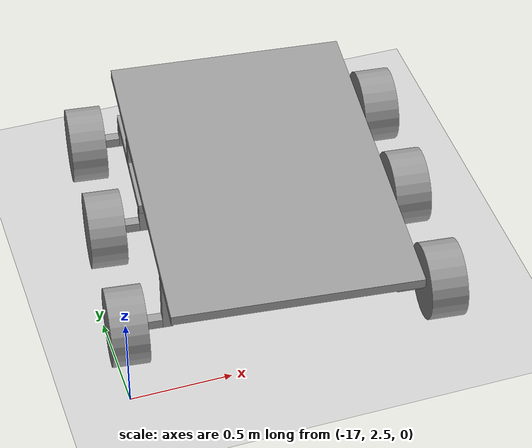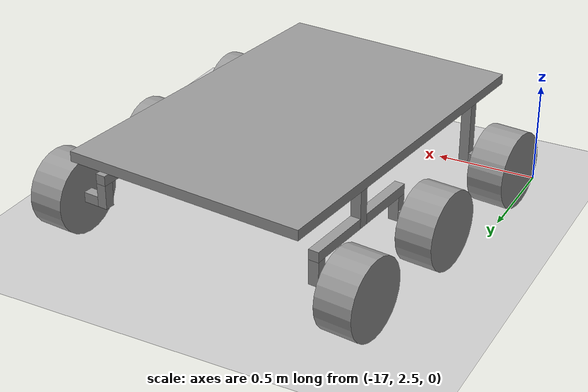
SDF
<sdf version="1.6">
 <world name="default">
  <model name="ground_plane">
   <static>1</static>
   <link name="link">
    <collision name="collision">
     <geometry><plane><normal>0 0 1</normal><size>100 100</size></plane></geometry>
     <surface><friction><ode><mu>100</mu><mu2>50</mu2></ode></friction></surface>
    </collision>
    <visual name="visual">
     <cast_shadows>0</cast_shadows>
     <geometry><plane><normal>0 0 1</normal><size>100 100</size></plane></geometry>
     <material>
      <script><uri>file://media/materials/scripts/gazebo.material</uri><name>Gazebo/Grey</name></script>
     </material>
    </visual>
   </link>
  </model>
  <model name="model1_0">
   <link name="link_0">
    <inertial>
     <mass>1</mass>
     <inertia>
      <ixx>0.166667</ixx>
      <ixy>0</ixy>
      <ixz>0</ixz>
      <iyy>0.166667</iyy>
      <iyz>0</iyz>
      <izz>0.166667</izz>
     </inertia>
    </inertial>
    <pose>0.453204 0.202085 0.600179 0 -0 0</pose>
    <visual name="visual">
     <geometry><box><size>1.2 1.8 0.05</size></box></geometry>
     <material>
      <lighting>1</lighting>
      <script><uri>file://media/materials/scripts/gazebo.material</uri><name>Gazebo/Grey</name></script>
      <shader type="pixel"><normal_map>__default__</normal_map></shader>
      <ambient>0.3 0.3 0.3 1</ambient>
      <diffuse>0.7 0.7 0.7 1</diffuse>
      <specular>0.01 0.01 0.01 1</specular>
      <emissive>0 0 0 1</emissive>
     </material>
    </visual>
    <collision name="collision">
     <geometry><box><size>1.2 1.8 0.05</size></box></geometry>
     <surface>
      <friction>
       <ode><mu>1</mu><mu2>1</mu2><fdir1>0 0 0</fdir1><slip1>0</slip1><slip2>0</slip2></ode>
       <torsional>
        <coefficient>1</coefficient>
        <patch_radius>0</patch_radius>
        <surface_radius>0</surface_radius>
        <use_patch_radius>1</use_patch_radius>
        <ode><slip>0</slip></ode>
       </torsional>
      </friction>
      <bounce><restitution_coefficient>0</restitution_coefficient><threshold>1e+06</threshold></bounce>
      <contact>
       <collide_without_contact>0</collide_without_contact>
       <collide_without_contact_bitmask>1</collide_without_contact_bitmask>
       <collide_bitmask>1</collide_bitmask>
       <ode>
        <soft_cfm>0</soft_cfm>
        <soft_erp>0.2</soft_erp>
        <kp>1e+13</kp>
        <kd>1</kd>
        <max_vel>0.01</max_vel>
        <min_depth>0</min_depth>
       </ode>
       <bullet>
        <split_impulse>1</split_impulse>
        <split_impulse_penetration_threshold>-0.01</split_impulse_penetration_threshold>
        <soft_cfm>0</soft_cfm>
        <soft_erp>0.2</soft_erp>
        <kp>1e+13</kp>
        <kd>1</kd>
       </bullet>
      </contact>
     </surface>
    </collision>
   </link>
   <link name="link_0_0_clone_clone_1">
    <inertial>
     <mass>1</mass>
     <inertia><ixx>0.145833</ixx><ixy>0</ixy><ixz>0</ixz><iyy>0.145833</iyy><iyz>0</iyz><izz>0.125</izz></inertia>
    </inertial>
    <pose>1.2232 -0.397915 0.300179 -3.14153 1.57079 -3.14153</pose>
    <visual name="visual_0">
     <geometry><cylinder><radius>0.19</radius><length>0.18</length></cylinder></geometry>
     <material>
      <lighting>1</lighting>
      <script><uri>file://media/materials/scripts/gazebo.material</uri><name>Gazebo/Grey</name></script>
      <shader type="pixel"><normal_map>__default__</normal_map></shader>
      <ambient>0.3 0.3 0.3 1</ambient>
      <diffuse>0.7 0.7 0.7 1</diffuse>
      <specular>0.01 0.01 0.01 1</specular>
      <emissive>0 0 0 1</emissive>
     </material>
    </visual>
    <collision name="collision">
     <geometry><cylinder><radius>0.19</radius><length>0.18</length></cylinder></geometry>
     <surface>
      <friction>
       <ode><mu>1</mu><mu2>1</mu2><fdir1>0 0 0</fdir1><slip1>0</slip1><slip2>0</slip2></ode>
       <torsional>
        <coefficient>1</coefficient>
        <patch_radius>0</patch_radius>
        <surface_radius>0</surface_radius>
        <use_patch_radius>1</use_patch_radius>
        <ode><slip>0</slip></ode>
       </torsional>
      </friction>
      <bounce><restitution_coefficient>0</restitution_coefficient><threshold>1e+06</threshold></bounce>
      <contact>
       <collide_without_contact>0</collide_without_contact>
       <collide_without_contact_bitmask>1</collide_without_contact_bitmask>
       <collide_bitmask>1</collide_bitmask>
       <ode>
        <soft_cfm>0</soft_cfm>
        <soft_erp>0.2</soft_erp>
        <kp>1e+13</kp>
        <kd>1</kd>
        <max_vel>0.01</max_vel>
        <min_depth>0</min_depth>
       </ode>
       <bullet>
        <split_impulse>1</split_impulse>
        <split_impulse_penetration_threshold>-0.01</split_impulse_penetration_threshold>
        <soft_cfm>0</soft_cfm>
        <soft_erp>0.2</soft_erp>
        <kp>1e+13</kp>
        <kd>1</kd>
       </bullet>
      </contact>
     </surface>
    </collision>
   </link>
   <link name="link_0_0_clone_clone_1_clone_0">
    <inertial>
     <mass>1</mass>
     <inertia><ixx>0.145833</ixx><ixy>0</ixy><ixz>0</ixz><iyy>0.145833</iyy><iyz>0</iyz><izz>0.125</izz></inertia>
    </inertial>
    <pose>1.2232 0.277085 0.30018 -3.14153 1.57079 -3.14153</pose>
    <visual name="visual_0">
     <geometry><cylinder><radius>0.19</radius><length>0.18</length></cylinder></geometry>
     <material>
      <lighting>1</lighting>
      <script><uri>file://media/materials/scripts/gazebo.material</uri><name>Gazebo/Grey</name></script>
      <shader type="pixel"><normal_map>__default__</normal_map></shader>
      <ambient>0.3 0.3 0.3 1</ambient>
      <diffuse>0.7 0.7 0.7 1</diffuse>
      <specular>0.01 0.01 0.01 1</specular>
      <emissive>0 0 0 1</emissive>
     </material>
    </visual>
    <collision name="collision">
     <geometry><cylinder><radius>0.19</radius><length>0.18</length></cylinder></geometry>
     <surface>
      <friction>
       <ode><mu>1</mu><mu2>1</mu2><fdir1>0 0 0</fdir1><slip1>0</slip1><slip2>0</slip2></ode>
       <torsional>
        <coefficient>1</coefficient>
        <patch_radius>0</patch_radius>
        <surface_radius>0</surface_radius>
        <use_patch_radius>1</use_patch_radius>
        <ode><slip>0</slip></ode>
       </torsional>
      </friction>
      <bounce><restitution_coefficient>0</restitution_coefficient><threshold>1e+06</threshold></bounce>
      <contact>
       <collide_without_contact>0</collide_without_contact>
       <collide_without_contact_bitmask>1</collide_without_contact_bitmask>
       <collide_bitmask>1</collide_bitmask>
       <ode>
        <soft_cfm>0</soft_cfm>
        <soft_erp>0.2</soft_erp>
        <kp>1e+13</kp>
        <kd>1</kd>
        <max_vel>0.01</max_vel>
        <min_depth>0</min_depth>
       </ode>
       <bullet>
        <split_impulse>1</split_impulse>
        <split_impulse_penetration_threshold>-0.01</split_impulse_penetration_threshold>
        <soft_cfm>0</soft_cfm>
        <soft_erp>0.2</soft_erp>
        <kp>1e+13</kp>
        <kd>1</kd>
       </bullet>
      </contact>
     </surface>
    </collision>
   </link>
   <link name="link_0_0_clone_clone_1_clone_1">
    <inertial>
     <mass>1</mass>
     <inertia><ixx>0.145833</ixx><ixy>0</ixy><ixz>0</ixz><iyy>0.145833</iyy><iyz>0</iyz><izz>0.125</izz></inertia>
    </inertial>
    <pose>1.2232 0.927085 0.30018 -3.14153 1.57079 -3.14153</pose>
    <visual name="visual_0">
     <geometry><cylinder><radius>0.19</radius><length>0.18</length></cylinder></geometry>
     <material>
      <lighting>1</lighting>
      <script><uri>file://media/materials/scripts/gazebo.material</uri><name>Gazebo/Grey</name></script>
      <shader type="pixel"><normal_map>__default__</normal_map></shader>
      <ambient>0.3 0.3 0.3 1</ambient>
      <diffuse>0.7 0.7 0.7 1</diffuse>
      <specular>0.01 0.01 0.01 1</specular>
      <emissive>0 0 0 1</emissive>
     </material>
    </visual>
    <collision name="collision">
     <geometry><cylinder><radius>0.19</radius><length>0.18</length></cylinder></geometry>
     <surface>
      <friction>
       <ode><mu>1</mu><mu2>1</mu2><fdir1>0 0 0</fdir1><slip1>0</slip1><slip2>0</slip2></ode>
       <torsional>
        <coefficient>1</coefficient>
        <patch_radius>0</patch_radius>
        <surface_radius>0</surface_radius>
        <use_patch_radius>1</use_patch_radius>
        <ode><slip>0</slip></ode>
       </torsional>
      </friction>
      <bounce><restitution_coefficient>0</restitution_coefficient><threshold>1e+06</threshold></bounce>
      <contact>
       <collide_without_contact>0</collide_without_contact>
       <collide_without_contact_bitmask>1</collide_without_contact_bitmask>
       <collide_bitmask>1</collide_bitmask>
       <ode>
        <soft_cfm>0</soft_cfm>
        <soft_erp>0.2</soft_erp>
        <kp>1e+13</kp>
        <kd>1</kd>
        <max_vel>0.01</max_vel>
        <min_depth>0</min_depth>
       </ode>
       <bullet>
        <split_impulse>1</split_impulse>
        <split_impulse_penetration_threshold>-0.01</split_impulse_penetration_threshold>
        <soft_cfm>0</soft_cfm>
        <soft_erp>0.2</soft_erp>
        <kp>1e+13</kp>
        <kd>1</kd>
       </bullet>
      </contact>
     </surface>
    </collision>
   </link>
   <link name="link_0_0_clone_clone_1_clone_clone_1">
    <inertial>
     <mass>1</mass>
     <inertia><ixx>0.145833</ixx><ixy>0</ixy><ixz>0</ixz><iyy>0.145833</iyy><iyz>0</iyz><izz>0.125</izz></inertia>
    </inertial>
    <pose>-0.319461 -0.397915 0.300179 3.14154 -1.57079 3.12758</pose>
    <visual name="visual_0">
     <geometry><cylinder><radius>0.19</radius><length>0.18</length></cylinder></geometry>
     <material>
      <lighting>1</lighting>
      <script><uri>file://media/materials/scripts/gazebo.material</uri><name>Gazebo/Grey</name></script>
      <shader type="pixel"><normal_map>__default__</normal_map></shader>
      <ambient>0.3 0.3 0.3 1</ambient>
      <diffuse>0.7 0.7 0.7 1</diffuse>
      <specular>0.01 0.01 0.01 1</specular>
      <emissive>0 0 0 1</emissive>
     </material>
    </visual>
    <collision name="collision">
     <geometry><cylinder><radius>0.19</radius><length>0.18</length></cylinder></geometry>
     <surface>
      <friction>
       <ode><mu>1</mu><mu2>1</mu2><fdir1>0 0 0</fdir1><slip1>0</slip1><slip2>0</slip2></ode>
       <torsional>
        <coefficient>1</coefficient>
        <patch_radius>0</patch_radius>
        <surface_radius>0</surface_radius>
        <use_patch_radius>1</use_patch_radius>
        <ode><slip>0</slip></ode>
       </torsional>
      </friction>
      <bounce><restitution_coefficient>0</restitution_coefficient><threshold>1e+06</threshold></bounce>
      <contact>
       <collide_without_contact>0</collide_without_contact>
       <collide_without_contact_bitmask>1</collide_without_contact_bitmask>
       <collide_bitmask>1</collide_bitmask>
       <ode>
        <soft_cfm>0</soft_cfm>
        <soft_erp>0.2</soft_erp>
        <kp>1e+13</kp>
        <kd>1</kd>
        <max_vel>0.01</max_vel>
        <min_depth>0</min_depth>
       </ode>
       <bullet>
        <split_impulse>1</split_impulse>
        <split_impulse_penetration_threshold>-0.01</split_impulse_penetration_threshold>
        <soft_cfm>0</soft_cfm>
        <soft_erp>0.2</soft_erp>
        <kp>1e+13</kp>
        <kd>1</kd>
       </bullet>
      </contact>
     </surface>
    </collision>
   </link>
   <link name="link_0_0_clone_clone_1_clone_clone_1_clone">
    <inertial>
     <mass>1</mass>
     <inertia><ixx>0.145833</ixx><ixy>0</ixy><ixz>0</ixz><iyy>0.145833</iyy><iyz>0</iyz><izz>0.125</izz></inertia>
    </inertial>
    <pose>-0.319461 0.277085 0.30018 3.14154 -1.57079 3.12758</pose>
    <visual name="visual_0">
     <geometry><cylinder><radius>0.19</radius><length>0.18</length></cylinder></geometry>
     <material>
      <lighting>1</lighting>
      <script><uri>file://media/materials/scripts/gazebo.material</uri><name>Gazebo/Grey</name></script>
      <shader type="pixel"><normal_map>__default__</normal_map></shader>
      <ambient>0.3 0.3 0.3 1</ambient>
      <diffuse>0.7 0.7 0.7 1</diffuse>
      <specular>0.01 0.01 0.01 1</specular>
      <emissive>0 0 0 1</emissive>
     </material>
    </visual>
    <collision name="collision">
     <geometry><cylinder><radius>0.19</radius><length>0.18</length></cylinder></geometry>
     <surface>
      <friction>
       <ode><mu>1</mu><mu2>1</mu2><fdir1>0 0 0</fdir1><slip1>0</slip1><slip2>0</slip2></ode>
       <torsional>
        <coefficient>1</coefficient>
        <patch_radius>0</patch_radius>
        <surface_radius>0</surface_radius>
        <use_patch_radius>1</use_patch_radius>
        <ode><slip>0</slip></ode>
       </torsional>
      </friction>
      <bounce><restitution_coefficient>0</restitution_coefficient><threshold>1e+06</threshold></bounce>
      <contact>
       <collide_without_contact>0</collide_without_contact>
       <collide_without_contact_bitmask>1</collide_without_contact_bitmask>
       <collide_bitmask>1</collide_bitmask>
       <ode>
        <soft_cfm>0</soft_cfm>
        <soft_erp>0.2</soft_erp>
        <kp>1e+13</kp>
        <kd>1</kd>
        <max_vel>0.01</max_vel>
        <min_depth>0</min_depth>
       </ode>
       <bullet>
        <split_impulse>1</split_impulse>
        <split_impulse_penetration_threshold>-0.01</split_impulse_penetration_threshold>
        <soft_cfm>0</soft_cfm>
        <soft_erp>0.2</soft_erp>
        <kp>1e+13</kp>
        <kd>1</kd>
       </bullet>
      </contact>
     </surface>
    </collision>
   </link>
   <link name="link_0_0_clone_clone_1_clone_clone_1_clone_0">
    <inertial>
     <mass>1</mass>
     <inertia><ixx>0.145833</ixx><ixy>0</ixy><ixz>0</ixz><iyy>0.145833</iyy><iyz>0</iyz><izz>0.125</izz></inertia>
    </inertial>
    <pose>-0.319461 0.927085 0.30018 3.14154 -1.57079 3.12758</pose>
    <visual name="visual_0">
     <geometry><cylinder><radius>0.19</radius><length>0.18</length></cylinder></geometry>
     <material>
      <lighting>1</lighting>
      <script><uri>file://media/materials/scripts/gazebo.material</uri><name>Gazebo/Grey</name></script>
      <shader type="pixel"><normal_map>__default__</normal_map></shader>
      <ambient>0.3 0.3 0.3 1</ambient>
      <diffuse>0.7 0.7 0.7 1</diffuse>
      <specular>0.01 0.01 0.01 1</specular>
      <emissive>0 0 0 1</emissive>
     </material>
    </visual>
    <collision name="collision">
     <geometry><cylinder><radius>0.19</radius><length>0.18</length></cylinder></geometry>
     <surface>
      <friction>
       <ode><mu>1</mu><mu2>1</mu2><fdir1>0 0 0</fdir1><slip1>0</slip1><slip2>0</slip2></ode>
       <torsional>
        <coefficient>1</coefficient>
        <patch_radius>0</patch_radius>
        <surface_radius>0</surface_radius>
        <use_patch_radius>1</use_patch_radius>
        <ode><slip>0</slip></ode>
       </torsional>
      </friction>
      <bounce><restitution_coefficient>0</restitution_coefficient><threshold>1e+06</threshold></bounce>
      <contact>
       <collide_without_contact>0</collide_without_contact>
       <collide_without_contact_bitmask>1</collide_without_contact_bitmask>
       <collide_bitmask>1</collide_bitmask>
       <ode>
        <soft_cfm>0</soft_cfm>
        <soft_erp>0.2</soft_erp>
        <kp>1e+13</kp>
        <kd>1</kd>
        <max_vel>0.01</max_vel>
        <min_depth>0</min_depth>
       </ode>
       <bullet>
        <split_impulse>1</split_impulse>
        <split_impulse_penetration_threshold>-0.01</split_impulse_penetration_threshold>
        <soft_cfm>0</soft_cfm>
        <soft_erp>0.2</soft_erp>
        <kp>1e+13</kp>
        <kd>1</kd>
       </bullet>
      </contact>
     </surface>
    </collision>
   </link>
   <link name="link_1_clone">
    <inertial>
     <mass>1</mass>
     <inertia>
      <ixx>0.166667</ixx>
      <ixy>0</ixy>
      <ixz>0</ixz>
      <iyy>0.166667</iyy>
      <iyz>0</iyz>
      <izz>0.166667</izz>
     </inertia>
    </inertial>
    <pose>-0.121796 0.602085 0.485179 0 -0 0</pose>
    <visual name="visual">
     <geometry><box><size>0.05 0.05 0.18</size></box></geometry>
     <material>
      <lighting>1</lighting>
      <script><uri>file://media/materials/scripts/gazebo.material</uri><name>Gazebo/Grey</name></script>
      <shader type="pixel"><normal_map>__default__</normal_map></shader>
      <ambient>0.3 0.3 0.3 1</ambient>
      <diffuse>0.7 0.7 0.7 1</diffuse>
      <specular>0.01 0.01 0.01 1</specular>
      <emissive>0 0 0 1</emissive>
     </material>
    </visual>
    <collision name="collision">
     <geometry><box><size>0.05 0.05 0.18</size></box></geometry>
     <surface>
      <friction>
       <ode><mu>1</mu><mu2>1</mu2><fdir1>0 0 0</fdir1><slip1>0</slip1><slip2>0</slip2></ode>
       <torsional>
        <coefficient>1</coefficient>
        <patch_radius>0</patch_radius>
        <surface_radius>0</surface_radius>
        <use_patch_radius>1</use_patch_radius>
        <ode><slip>0</slip></ode>
       </torsional>
      </friction>
      <bounce><restitution_coefficient>0</restitution_coefficient><threshold>1e+06</threshold></bounce>
      <contact>
       <collide_without_contact>0</collide_without_contact>
       <collide_without_contact_bitmask>1</collide_without_contact_bitmask>
       <collide_bitmask>1</collide_bitmask>
       <ode>
        <soft_cfm>0</soft_cfm>
        <soft_erp>0.2</soft_erp>
        <kp>1e+13</kp>
        <kd>1</kd>
        <max_vel>0.01</max_vel>
        <min_depth>0</min_depth>
       </ode>
       <bullet>
        <split_impulse>1</split_impulse>
        <split_impulse_penetration_threshold>-0.01</split_impulse_penetration_threshold>
        <soft_cfm>0</soft_cfm>
        <soft_erp>0.2</soft_erp>
        <kp>1e+13</kp>
        <kd>1</kd>
       </bullet>
      </contact>
     </surface>
    </collision>
   </link>
   <link name="link_1_clone_0">
    <inertial>
     <mass>1</mass>
     <inertia>
      <ixx>0.166667</ixx>
      <ixy>0</ixy>
      <ixz>0</ixz>
      <iyy>0.166667</iyy>
      <iyz>0</iyz>
      <izz>0.166667</izz>
     </inertia>
    </inertial>
    <pose>1.0282 -0.397915 0.425179 0 -0 0</pose>
    <visual name="visual">
     <geometry><box><size>0.05 0.05 0.3</size></box></geometry>
     <material>
      <lighting>1</lighting>
      <script><uri>file://media/materials/scripts/gazebo.material</uri><name>Gazebo/Grey</name></script>
      <shader type="pixel"><normal_map>__default__</normal_map></shader>
      <ambient>0.3 0.3 0.3 1</ambient>
      <diffuse>0.7 0.7 0.7 1</diffuse>
      <specular>0.01 0.01 0.01 1</specular>
      <emissive>0 0 0 1</emissive>
     </material>
    </visual>
    <collision name="collision">
     <geometry><box><size>0.05 0.05 0.3</size></box></geometry>
     <surface>
      <friction>
       <ode><mu>1</mu><mu2>1</mu2><fdir1>0 0 0</fdir1><slip1>0</slip1><slip2>0</slip2></ode>
       <torsional>
        <coefficient>1</coefficient>
        <patch_radius>0</patch_radius>
        <surface_radius>0</surface_radius>
        <use_patch_radius>1</use_patch_radius>
        <ode><slip>0</slip></ode>
       </torsional>
      </friction>
      <bounce><restitution_coefficient>0</restitution_coefficient><threshold>1e+06</threshold></bounce>
      <contact>
       <collide_without_contact>0</collide_without_contact>
       <collide_without_contact_bitmask>1</collide_without_contact_bitmask>
       <collide_bitmask>1</collide_bitmask>
       <ode>
        <soft_cfm>0</soft_cfm>
        <soft_erp>0.2</soft_erp>
        <kp>1e+13</kp>
        <kd>1</kd>
        <max_vel>0.01</max_vel>
        <min_depth>0</min_depth>
       </ode>
       <bullet>
        <split_impulse>1</split_impulse>
        <split_impulse_penetration_threshold>-0.01</split_impulse_penetration_threshold>
        <soft_cfm>0</soft_cfm>
        <soft_erp>0.2</soft_erp>
        <kp>1e+13</kp>
        <kd>1</kd>
       </bullet>
      </contact>
     </surface>
    </collision>
   </link>
   <link name="link_1_clone_0_clone">
    <inertial>
     <mass>1</mass>
     <inertia>
      <ixx>0.166667</ixx>
      <ixy>0</ixy>
      <ixz>0</ixz>
      <iyy>0.166667</iyy>
      <iyz>0</iyz>
      <izz>0.166667</izz>
     </inertia>
    </inertial>
    <pose>1.0282 0.602085 0.485179 3.14159 -0 0</pose>
    <visual name="visual">
     <geometry><box><size>0.05 0.05 0.18</size></box></geometry>
     <material>
      <lighting>1</lighting>
      <script><uri>file://media/materials/scripts/gazebo.material</uri><name>Gazebo/Grey</name></script>
      <shader type="pixel"><normal_map>__default__</normal_map></shader>
      <ambient>0.3 0.3 0.3 1</ambient>
      <diffuse>0.7 0.7 0.7 1</diffuse>
      <specular>0.01 0.01 0.01 1</specular>
      <emissive>0 0 0 1</emissive>
     </material>
    </visual>
    <collision name="collision">
     <geometry><box><size>0.05 0.05 0.18</size></box></geometry>
     <surface>
      <friction>
       <ode><mu>1</mu><mu2>1</mu2><fdir1>0 0 0</fdir1><slip1>0</slip1><slip2>0</slip2></ode>
       <torsional>
        <coefficient>1</coefficient>
        <patch_radius>0</patch_radius>
        <surface_radius>0</surface_radius>
        <use_patch_radius>1</use_patch_radius>
        <ode><slip>0</slip></ode>
       </torsional>
      </friction>
      <bounce><restitution_coefficient>0</restitution_coefficient><threshold>1e+06</threshold></bounce>
      <contact>
       <collide_without_contact>0</collide_without_contact>
       <collide_without_contact_bitmask>1</collide_without_contact_bitmask>
       <collide_bitmask>1</collide_bitmask>
       <ode>
        <soft_cfm>0</soft_cfm>
        <soft_erp>0.2</soft_erp>
        <kp>1e+13</kp>
        <kd>1</kd>
        <max_vel>0.01</max_vel>
        <min_depth>0</min_depth>
       </ode>
       <bullet>
        <split_impulse>1</split_impulse>
        <split_impulse_penetration_threshold>-0.01</split_impulse_penetration_threshold>
        <soft_cfm>0</soft_cfm>
        <soft_erp>0.2</soft_erp>
        <kp>1e+13</kp>
        <kd>1</kd>
       </bullet>
      </contact>
     </surface>
    </collision>
   </link>
   <link name="link_1_clone_1">
    <inertial>
     <mass>1</mass>
     <inertia>
      <ixx>0.166667</ixx>
      <ixy>0</ixy>
      <ixz>0</ixz>
      <iyy>0.166667</iyy>
      <iyz>0</iyz>
      <izz>0.166667</izz>
     </inertia>
    </inertial>
    <pose>-0.121796 -0.397915 0.425179 0 -0 0</pose>
    <visual name="visual">
     <geometry><box><size>0.05 0.05 0.3</size></box></geometry>
     <material>
      <lighting>1</lighting>
      <script><uri>file://media/materials/scripts/gazebo.material</uri><name>Gazebo/Grey</name></script>
      <shader type="pixel"><normal_map>__default__</normal_map></shader>
      <ambient>0.3 0.3 0.3 1</ambient>
      <diffuse>0.7 0.7 0.7 1</diffuse>
      <specular>0.01 0.01 0.01 1</specular>
      <emissive>0 0 0 1</emissive>
     </material>
    </visual>
    <collision name="collision">
     <geometry><box><size>0.05 0.05 0.3</size></box></geometry>
     <surface>
      <friction>
       <ode><mu>1</mu><mu2>1</mu2><fdir1>0 0 0</fdir1><slip1>0</slip1><slip2>0</slip2></ode>
       <torsional>
        <coefficient>1</coefficient>
        <patch_radius>0</patch_radius>
        <surface_radius>0</surface_radius>
        <use_patch_radius>1</use_patch_radius>
        <ode><slip>0</slip></ode>
       </torsional>
      </friction>
      <bounce><restitution_coefficient>0</restitution_coefficient><threshold>1e+06</threshold></bounce>
      <contact>
       <collide_without_contact>0</collide_without_contact>
       <collide_without_contact_bitmask>1</collide_without_contact_bitmask>
       <collide_bitmask>1</collide_bitmask>
       <ode>
        <soft_cfm>0</soft_cfm>
        <soft_erp>0.2</soft_erp>
        <kp>1e+13</kp>
        <kd>1</kd>
        <max_vel>0.01</max_vel>
        <min_depth>0</min_depth>
       </ode>
       <bullet>
        <split_impulse>1</split_impulse>
        <split_impulse_penetration_threshold>-0.01</split_impulse_penetration_threshold>
        <soft_cfm>0</soft_cfm>
        <soft_erp>0.2</soft_erp>
        <kp>1e+13</kp>
        <kd>1</kd>
       </bullet>
      </contact>
     </surface>
    </collision>
   </link>
   <link name="link_1_clone_2">
    <inertial>
     <mass>1</mass>
     <inertia>
      <ixx>0.166667</ixx>
      <ixy>0</ixy>
      <ixz>0</ixz>
      <iyy>0.166667</iyy>
      <iyz>0</iyz>
      <izz>0.166667</izz>
     </inertia>
    </inertial>
    <pose>1.0282 0.927085 0.33518 0 -0 0</pose>
    <visual name="visual">
     <geometry><box><size>0.05 0.05 0.12</size></box></geometry>
     <material>
      <lighting>1</lighting>
      <script><uri>file://media/materials/scripts/gazebo.material</uri><name>Gazebo/Grey</name></script>
      <shader type="pixel"><normal_map>__default__</normal_map></shader>
      <ambient>0.3 0.3 0.3 1</ambient>
      <diffuse>0.7 0.7 0.7 1</diffuse>
      <specular>0.01 0.01 0.01 1</specular>
      <emissive>0 0 0 1</emissive>
     </material>
    </visual>
    <collision name="collision">
     <geometry><box><size>0.05 0.05 0.12</size></box></geometry>
     <surface>
      <friction>
       <ode><mu>1</mu><mu2>1</mu2><fdir1>0 0 0</fdir1><slip1>0</slip1><slip2>0</slip2></ode>
       <torsional>
        <coefficient>1</coefficient>
        <patch_radius>0</patch_radius>
        <surface_radius>0</surface_radius>
        <use_patch_radius>1</use_patch_radius>
        <ode><slip>0</slip></ode>
       </torsional>
      </friction>
      <bounce><restitution_coefficient>0</restitution_coefficient><threshold>1e+06</threshold></bounce>
      <contact>
       <collide_without_contact>0</collide_without_contact>
       <collide_without_contact_bitmask>1</collide_without_contact_bitmask>
       <collide_bitmask>1</collide_bitmask>
       <ode>
        <soft_cfm>0</soft_cfm>
        <soft_erp>0.2</soft_erp>
        <kp>1e+13</kp>
        <kd>1</kd>
        <max_vel>0.01</max_vel>
        <min_depth>0</min_depth>
       </ode>
       <bullet>
        <split_impulse>1</split_impulse>
        <split_impulse_penetration_threshold>-0.01</split_impulse_penetration_threshold>
        <soft_cfm>0</soft_cfm>
        <soft_erp>0.2</soft_erp>
        <kp>1e+13</kp>
        <kd>1</kd>
       </bullet>
      </contact>
     </surface>
    </collision>
   </link>
   <link name="link_1_clone_3">
    <inertial>
     <mass>1</mass>
     <inertia>
      <ixx>0.166667</ixx>
      <ixy>0</ixy>
      <ixz>0</ixz>
      <iyy>0.166667</iyy>
      <iyz>0</iyz>
      <izz>0.166667</izz>
     </inertia>
    </inertial>
    <pose>1.0282 0.277085 0.33518 0 -0 0</pose>
    <visual name="visual">
     <geometry><box><size>0.05 0.05 0.12</size></box></geometry>
     <material>
      <lighting>1</lighting>
      <script><uri>file://media/materials/scripts/gazebo.material</uri><name>Gazebo/Grey</name></script>
      <shader type="pixel"><normal_map>__default__</normal_map></shader>
      <ambient>0.3 0.3 0.3 1</ambient>
      <diffuse>0.7 0.7 0.7 1</diffuse>
      <specular>0.01 0.01 0.01 1</specular>
      <emissive>0 0 0 1</emissive>
     </material>
    </visual>
    <collision name="collision">
     <geometry><box><size>0.05 0.05 0.12</size></box></geometry>
     <surface>
      <friction>
       <ode><mu>1</mu><mu2>1</mu2><fdir1>0 0 0</fdir1><slip1>0</slip1><slip2>0</slip2></ode>
       <torsional>
        <coefficient>1</coefficient>
        <patch_radius>0</patch_radius>
        <surface_radius>0</surface_radius>
        <use_patch_radius>1</use_patch_radius>
        <ode><slip>0</slip></ode>
       </torsional>
      </friction>
      <bounce><restitution_coefficient>0</restitution_coefficient><threshold>1e+06</threshold></bounce>
      <contact>
       <collide_without_contact>0</collide_without_contact>
       <collide_without_contact_bitmask>1</collide_without_contact_bitmask>
       <collide_bitmask>1</collide_bitmask>
       <ode>
        <soft_cfm>0</soft_cfm>
        <soft_erp>0.2</soft_erp>
        <kp>1e+13</kp>
        <kd>1</kd>
        <max_vel>0.01</max_vel>
        <min_depth>0</min_depth>
       </ode>
       <bullet>
        <split_impulse>1</split_impulse>
        <split_impulse_penetration_threshold>-0.01</split_impulse_penetration_threshold>
        <soft_cfm>0</soft_cfm>
        <soft_erp>0.2</soft_erp>
        <kp>1e+13</kp>
        <kd>1</kd>
       </bullet>
      </contact>
     </surface>
    </collision>
   </link>
   <link name="link_1_clone_3_clone">
    <inertial>
     <mass>1</mass>
     <inertia>
      <ixx>0.166667</ixx>
      <ixy>0</ixy>
      <ixz>0</ixz>
      <iyy>0.166667</iyy>
      <iyz>0</iyz>
      <izz>0.166667</izz>
     </inertia>
    </inertial>
    <pose>-0.121796 0.927085 0.33518 0 -0 0</pose>
    <visual name="visual">
     <geometry><box><size>0.05 0.05 0.12</size></box></geometry>
     <material>
      <lighting>1</lighting>
      <script><uri>file://media/materials/scripts/gazebo.material</uri><name>Gazebo/Grey</name></script>
      <shader type="pixel"><normal_map>__default__</normal_map></shader>
      <ambient>0.3 0.3 0.3 1</ambient>
      <diffuse>0.7 0.7 0.7 1</diffuse>
      <specular>0.01 0.01 0.01 1</specular>
      <emissive>0 0 0 1</emissive>
     </material>
    </visual>
    <collision name="collision">
     <geometry><box><size>0.05 0.05 0.12</size></box></geometry>
     <surface>
      <friction>
       <ode><mu>1</mu><mu2>1</mu2><fdir1>0 0 0</fdir1><slip1>0</slip1><slip2>0</slip2></ode>
       <torsional>
        <coefficient>1</coefficient>
        <patch_radius>0</patch_radius>
        <surface_radius>0</surface_radius>
        <use_patch_radius>1</use_patch_radius>
        <ode><slip>0</slip></ode>
       </torsional>
      </friction>
      <bounce><restitution_coefficient>0</restitution_coefficient><threshold>1e+06</threshold></bounce>
      <contact>
       <collide_without_contact>0</collide_without_contact>
       <collide_without_contact_bitmask>1</collide_without_contact_bitmask>
       <collide_bitmask>1</collide_bitmask>
       <ode>
        <soft_cfm>0</soft_cfm>
        <soft_erp>0.2</soft_erp>
        <kp>1e+13</kp>
        <kd>1</kd>
        <max_vel>0.01</max_vel>
        <min_depth>0</min_depth>
       </ode>
       <bullet>
        <split_impulse>1</split_impulse>
        <split_impulse_penetration_threshold>-0.01</split_impulse_penetration_threshold>
        <soft_cfm>0</soft_cfm>
        <soft_erp>0.2</soft_erp>
        <kp>1e+13</kp>
        <kd>1</kd>
       </bullet>
      </contact>
     </surface>
    </collision>
   </link>
   <link name="link_1_clone_3_clone_0">
    <inertial>
     <mass>1</mass>
     <inertia>
      <ixx>0.166667</ixx>
      <ixy>0</ixy>
      <ixz>0</ixz>
      <iyy>0.166667</iyy>
      <iyz>0</iyz>
      <izz>0.166667</izz>
     </inertia>
    </inertial>
    <pose>-0.121796 0.277085 0.33518 0 -0 0</pose>
    <visual name="visual">
     <geometry><box><size>0.05 0.05 0.12</size></box></geometry>
     <material>
      <lighting>1</lighting>
      <script><uri>file://media/materials/scripts/gazebo.material</uri><name>Gazebo/Grey</name></script>
      <shader type="pixel"><normal_map>__default__</normal_map></shader>
      <ambient>0.3 0.3 0.3 1</ambient>
      <diffuse>0.7 0.7 0.7 1</diffuse>
      <specular>0.01 0.01 0.01 1</specular>
      <emissive>0 0 0 1</emissive>
     </material>
    </visual>
    <collision name="collision">
     <geometry><box><size>0.05 0.05 0.12</size></box></geometry>
     <surface>
      <friction>
       <ode><mu>1</mu><mu2>1</mu2><fdir1>0 0 0</fdir1><slip1>0</slip1><slip2>0</slip2></ode>
       <torsional>
        <coefficient>1</coefficient>
        <patch_radius>0</patch_radius>
        <surface_radius>0</surface_radius>
        <use_patch_radius>1</use_patch_radius>
        <ode><slip>0</slip></ode>
       </torsional>
      </friction>
      <bounce><restitution_coefficient>0</restitution_coefficient><threshold>1e+06</threshold></bounce>
      <contact>
       <collide_without_contact>0</collide_without_contact>
       <collide_without_contact_bitmask>1</collide_without_contact_bitmask>
       <collide_bitmask>1</collide_bitmask>
       <ode>
        <soft_cfm>0</soft_cfm>
        <soft_erp>0.2</soft_erp>
        <kp>1e+13</kp>
        <kd>1</kd>
        <max_vel>0.01</max_vel>
        <min_depth>0</min_depth>
       </ode>
       <bullet>
        <split_impulse>1</split_impulse>
        <split_impulse_penetration_threshold>-0.01</split_impulse_penetration_threshold>
        <soft_cfm>0</soft_cfm>
        <soft_erp>0.2</soft_erp>
        <kp>1e+13</kp>
        <kd>1</kd>
       </bullet>
      </contact>
     </surface>
    </collision>
   </link>
   <link name="link_2">
    <inertial>
     <mass>1</mass>
     <inertia>
      <ixx>0.166667</ixx>
      <ixy>0</ixy>
      <ixz>0</ixz>
      <iyy>0.166667</iyy>
      <iyz>0</iyz>
      <izz>0.166667</izz>
     </inertia>
    </inertial>
    <pose>1.0282 0.602085 0.42018 0 -0 0</pose>
    <visual name="visual">
     <geometry><box><size>0.05 0.7 0.05</size></box></geometry>
     <material>
      <lighting>1</lighting>
      <script><uri>file://media/materials/scripts/gazebo.material</uri><name>Gazebo/Grey</name></script>
      <shader type="pixel"><normal_map>__default__</normal_map></shader>
      <ambient>0.3 0.3 0.3 1</ambient>
      <diffuse>0.7 0.7 0.7 1</diffuse>
      <specular>0.01 0.01 0.01 1</specular>
      <emissive>0 0 0 1</emissive>
     </material>
    </visual>
    <collision name="collision">
     <geometry><box><size>0.05 0.7 0.05</size></box></geometry>
     <surface>
      <friction>
       <ode><mu>1</mu><mu2>1</mu2><fdir1>0 0 0</fdir1><slip1>0</slip1><slip2>0</slip2></ode>
       <torsional>
        <coefficient>1</coefficient>
        <patch_radius>0</patch_radius>
        <surface_radius>0</surface_radius>
        <use_patch_radius>1</use_patch_radius>
        <ode><slip>0</slip></ode>
       </torsional>
      </friction>
      <bounce><restitution_coefficient>0</restitution_coefficient><threshold>1e+06</threshold></bounce>
      <contact>
       <collide_without_contact>0</collide_without_contact>
       <collide_without_contact_bitmask>1</collide_without_contact_bitmask>
       <collide_bitmask>1</collide_bitmask>
       <ode>
        <soft_cfm>0</soft_cfm>
        <soft_erp>0.2</soft_erp>
        <kp>1e+13</kp>
        <kd>1</kd>
        <max_vel>0.01</max_vel>
        <min_depth>0</min_depth>
       </ode>
       <bullet>
        <split_impulse>1</split_impulse>
        <split_impulse_penetration_threshold>-0.01</split_impulse_penetration_threshold>
        <soft_cfm>0</soft_cfm>
        <soft_erp>0.2</soft_erp>
        <kp>1e+13</kp>
        <kd>1</kd>
       </bullet>
      </contact>
     </surface>
    </collision>
   </link>
   <link name="link_2_clone">
    <inertial>
     <mass>1</mass>
     <inertia>
      <ixx>0.166667</ixx>
      <ixy>0</ixy>
      <ixz>0</ixz>
      <iyy>0.166667</iyy>
      <iyz>0</iyz>
      <izz>0.166667</izz>
     </inertia>
    </inertial>
    <pose>-0.121796 0.602085 0.42018 0 -0 0</pose>
    <visual name="visual">
     <geometry><box><size>0.05 0.7 0.05</size></box></geometry>
     <material>
      <lighting>1</lighting>
      <script><uri>file://media/materials/scripts/gazebo.material</uri><name>Gazebo/Grey</name></script>
      <shader type="pixel"><normal_map>__default__</normal_map></shader>
      <ambient>0.3 0.3 0.3 1</ambient>
      <diffuse>0.7 0.7 0.7 1</diffuse>
      <specular>0.01 0.01 0.01 1</specular>
      <emissive>0 0 0 1</emissive>
     </material>
    </visual>
    <collision name="collision">
     <geometry><box><size>0.05 0.7 0.05</size></box></geometry>
     <surface>
      <friction>
       <ode><mu>1</mu><mu2>1</mu2><fdir1>0 0 0</fdir1><slip1>0</slip1><slip2>0</slip2></ode>
       <torsional>
        <coefficient>1</coefficient>
        <patch_radius>0</patch_radius>
        <surface_radius>0</surface_radius>
        <use_patch_radius>1</use_patch_radius>
        <ode><slip>0</slip></ode>
       </torsional>
      </friction>
      <bounce><restitution_coefficient>0</restitution_coefficient><threshold>1e+06</threshold></bounce>
      <contact>
       <collide_without_contact>0</collide_without_contact>
       <collide_without_contact_bitmask>1</collide_without_contact_bitmask>
       <collide_bitmask>1</collide_bitmask>
       <ode>
        <soft_cfm>0</soft_cfm>
        <soft_erp>0.2</soft_erp>
        <kp>1e+13</kp>
        <kd>1</kd>
        <max_vel>0.01</max_vel>
        <min_depth>0</min_depth>
       </ode>
       <bullet>
        <split_impulse>1</split_impulse>
        <split_impulse_penetration_threshold>-0.01</split_impulse_penetration_threshold>
        <soft_cfm>0</soft_cfm>
        <soft_erp>0.2</soft_erp>
        <kp>1e+13</kp>
        <kd>1</kd>
       </bullet>
      </contact>
     </surface>
    </collision>
   </link>
   <link name="link_4_clone_0_clone">
    <inertial>
     <mass>1</mass>
     <inertia>
      <ixx>0.166667</ixx>
      <ixy>0</ixy>
      <ixz>0</ixz>
      <iyy>0.166667</iyy>
      <iyz>0</iyz>
      <izz>0.166667</izz>
     </inertia>
    </inertial>
    <pose>1.0932 0.927085 0.30018 0 -0 0</pose>
    <visual name="visual">
     <geometry><box><size>0.08 0.05 0.05</size></box></geometry>
     <material>
      <lighting>1</lighting>
      <script><uri>file://media/materials/scripts/gazebo.material</uri><name>Gazebo/Grey</name></script>
      <shader type="pixel"><normal_map>__default__</normal_map></shader>
      <ambient>0.3 0.3 0.3 1</ambient>
      <diffuse>0.7 0.7 0.7 1</diffuse>
      <specular>0.01 0.01 0.01 1</specular>
      <emissive>0 0 0 1</emissive>
     </material>
    </visual>
    <collision name="collision">
     <geometry><box><size>0.08 0.05 0.05</size></box></geometry>
     <surface>
      <friction>
       <ode><mu>1</mu><mu2>1</mu2><fdir1>0 0 0</fdir1><slip1>0</slip1><slip2>0</slip2></ode>
       <torsional>
        <coefficient>1</coefficient>
        <patch_radius>0</patch_radius>
        <surface_radius>0</surface_radius>
        <use_patch_radius>1</use_patch_radius>
        <ode><slip>0</slip></ode>
       </torsional>
      </friction>
      <bounce><restitution_coefficient>0</restitution_coefficient><threshold>1e+06</threshold></bounce>
      <contact>
       <collide_without_contact>0</collide_without_contact>
       <collide_without_contact_bitmask>1</collide_without_contact_bitmask>
       <collide_bitmask>1</collide_bitmask>
       <ode>
        <soft_cfm>0</soft_cfm>
        <soft_erp>0.2</soft_erp>
        <kp>1e+13</kp>
        <kd>1</kd>
        <max_vel>0.01</max_vel>
        <min_depth>0</min_depth>
       </ode>
       <bullet>
        <split_impulse>1</split_impulse>
        <split_impulse_penetration_threshold>-0.01</split_impulse_penetration_threshold>
        <soft_cfm>0</soft_cfm>
        <soft_erp>0.2</soft_erp>
        <kp>1e+13</kp>
        <kd>1</kd>
       </bullet>
      </contact>
     </surface>
    </collision>
   </link>
   <link name="link_4_clone_0_clone_clone">
    <inertial>
     <mass>1</mass>
     <inertia>
      <ixx>0.166667</ixx>
      <ixy>0</ixy>
      <ixz>0</ixz>
      <iyy>0.166667</iyy>
      <iyz>0</iyz>
      <izz>0.166667</izz>
     </inertia>
    </inertial>
    <pose>1.0932 0.277085 0.30018 0 -0 0</pose>
    <visual name="visual">
     <geometry><box><size>0.08 0.05 0.05</size></box></geometry>
     <material>
      <lighting>1</lighting>
      <script><uri>file://media/materials/scripts/gazebo.material</uri><name>Gazebo/Grey</name></script>
      <shader type="pixel"><normal_map>__default__</normal_map></shader>
      <ambient>0.3 0.3 0.3 1</ambient>
      <diffuse>0.7 0.7 0.7 1</diffuse>
      <specular>0.01 0.01 0.01 1</specular>
      <emissive>0 0 0 1</emissive>
     </material>
    </visual>
    <collision name="collision">
     <geometry><box><size>0.08 0.05 0.05</size></box></geometry>
     <surface>
      <friction>
       <ode><mu>1</mu><mu2>1</mu2><fdir1>0 0 0</fdir1><slip1>0</slip1><slip2>0</slip2></ode>
       <torsional>
        <coefficient>1</coefficient>
        <patch_radius>0</patch_radius>
        <surface_radius>0</surface_radius>
        <use_patch_radius>1</use_patch_radius>
        <ode><slip>0</slip></ode>
       </torsional>
      </friction>
      <bounce><restitution_coefficient>0</restitution_coefficient><threshold>1e+06</threshold></bounce>
      <contact>
       <collide_without_contact>0</collide_without_contact>
       <collide_without_contact_bitmask>1</collide_without_contact_bitmask>
       <collide_bitmask>1</collide_bitmask>
       <ode>
        <soft_cfm>0</soft_cfm>
        <soft_erp>0.2</soft_erp>
        <kp>1e+13</kp>
        <kd>1</kd>
        <max_vel>0.01</max_vel>
        <min_depth>0</min_depth>
       </ode>
       <bullet>
        <split_impulse>1</split_impulse>
        <split_impulse_penetration_threshold>-0.01</split_impulse_penetration_threshold>
        <soft_cfm>0</soft_cfm>
        <soft_erp>0.2</soft_erp>
        <kp>1e+13</kp>
        <kd>1</kd>
       </bullet>
      </contact>
     </surface>
    </collision>
   </link>
   <link name="link_4_clone_0_clone_clone_0">
    <inertial>
     <mass>1</mass>
     <inertia>
      <ixx>0.166667</ixx>
      <ixy>0</ixy>
      <ixz>0</ixz>
      <iyy>0.166667</iyy>
      <iyz>0</iyz>
      <izz>0.166667</izz>
     </inertia>
    </inertial>
    <pose>-0.186796 0.927085 0.30018 0 -0 0</pose>
    <visual name="visual">
     <geometry><box><size>0.08 0.05 0.05</size></box></geometry>
     <material>
      <lighting>1</lighting>
      <script><uri>file://media/materials/scripts/gazebo.material</uri><name>Gazebo/Grey</name></script>
      <shader type="pixel"><normal_map>__default__</normal_map></shader>
      <ambient>0.3 0.3 0.3 1</ambient>
      <diffuse>0.7 0.7 0.7 1</diffuse>
      <specular>0.01 0.01 0.01 1</specular>
      <emissive>0 0 0 1</emissive>
     </material>
    </visual>
    <collision name="collision">
     <geometry><box><size>0.08 0.05 0.05</size></box></geometry>
     <surface>
      <friction>
       <ode><mu>1</mu><mu2>1</mu2><fdir1>0 0 0</fdir1><slip1>0</slip1><slip2>0</slip2></ode>
       <torsional>
        <coefficient>1</coefficient>
        <patch_radius>0</patch_radius>
        <surface_radius>0</surface_radius>
        <use_patch_radius>1</use_patch_radius>
        <ode><slip>0</slip></ode>
       </torsional>
      </friction>
      <bounce><restitution_coefficient>0</restitution_coefficient><threshold>1e+06</threshold></bounce>
      <contact>
       <collide_without_contact>0</collide_without_contact>
       <collide_without_contact_bitmask>1</collide_without_contact_bitmask>
       <collide_bitmask>1</collide_bitmask>
       <ode>
        <soft_cfm>0</soft_cfm>
        <soft_erp>0.2</soft_erp>
        <kp>1e+13</kp>
        <kd>1</kd>
        <max_vel>0.01</max_vel>
        <min_depth>0</min_depth>
       </ode>
       <bullet>
        <split_impulse>1</split_impulse>
        <split_impulse_penetration_threshold>-0.01</split_impulse_penetration_threshold>
        <soft_cfm>0</soft_cfm>
        <soft_erp>0.2</soft_erp>
        <kp>1e+13</kp>
        <kd>1</kd>
       </bullet>
      </contact>
     </surface>
    </collision>
   </link>
   <link name="link_4_clone_0_clone_clone_1">
    <inertial>
     <mass>1</mass>
     <inertia>
      <ixx>0.166667</ixx>
      <ixy>0</ixy>
      <ixz>0</ixz>
      <iyy>0.166667</iyy>
      <iyz>0</iyz>
      <izz>0.166667</izz>
     </inertia>
    </inertial>
    <pose>-0.186796 0.277085 0.30018 0 -0 0</pose>
    <visual name="visual">
     <geometry><box><size>0.08 0.05 0.05</size></box></geometry>
     <material>
      <lighting>1</lighting>
      <script><uri>file://media/materials/scripts/gazebo.material</uri><name>Gazebo/Grey</name></script>
      <shader type="pixel"><normal_map>__default__</normal_map></shader>
      <ambient>0.3 0.3 0.3 1</ambient>
      <diffuse>0.7 0.7 0.7 1</diffuse>
      <specular>0.01 0.01 0.01 1</specular>
      <emissive>0 0 0 1</emissive>
     </material>
    </visual>
    <collision name="collision">
     <geometry><box><size>0.08 0.05 0.05</size></box></geometry>
     <surface>
      <friction>
       <ode><mu>1</mu><mu2>1</mu2><fdir1>0 0 0</fdir1><slip1>0</slip1><slip2>0</slip2></ode>
       <torsional>
        <coefficient>1</coefficient>
        <patch_radius>0</patch_radius>
        <surface_radius>0</surface_radius>
        <use_patch_radius>1</use_patch_radius>
        <ode><slip>0</slip></ode>
       </torsional>
      </friction>
      <bounce><restitution_coefficient>0</restitution_coefficient><threshold>1e+06</threshold></bounce>
      <contact>
       <collide_without_contact>0</collide_without_contact>
       <collide_without_contact_bitmask>1</collide_without_contact_bitmask>
       <collide_bitmask>1</collide_bitmask>
       <ode>
        <soft_cfm>0</soft_cfm>
        <soft_erp>0.2</soft_erp>
        <kp>1e+13</kp>
        <kd>1</kd>
        <max_vel>0.01</max_vel>
        <min_depth>0</min_depth>
       </ode>
       <bullet>
        <split_impulse>1</split_impulse>
        <split_impulse_penetration_threshold>-0.01</split_impulse_penetration_threshold>
        <soft_cfm>0</soft_cfm>
        <soft_erp>0.2</soft_erp>
        <kp>1e+13</kp>
        <kd>1</kd>
       </bullet>
      </contact>
     </surface>
    </collision>
   </link>
   <link name="link_4_clone_1">
    <inertial>
     <mass>1</mass>
     <inertia>
      <ixx>0.166667</ixx>
      <ixy>0</ixy>
      <ixz>0</ixz>
      <iyy>0.166667</iyy>
      <iyz>0</iyz>
      <izz>0.166667</izz>
     </inertia>
    </inertial>
    <pose>1.0932 -0.397915 0.300179 0 -0 0</pose>
    <visual name="visual">
     <geometry><box><size>0.08 0.05 0.05</size></box></geometry>
     <material>
      <lighting>1</lighting>
      <script><uri>file://media/materials/scripts/gazebo.material</uri><name>Gazebo/Grey</name></script>
      <shader type="pixel"><normal_map>__default__</normal_map></shader>
      <ambient>0.3 0.3 0.3 1</ambient>
      <diffuse>0.7 0.7 0.7 1</diffuse>
      <specular>0.01 0.01 0.01 1</specular>
      <emissive>0 0 0 1</emissive>
     </material>
    </visual>
    <collision name="collision">
     <geometry><box><size>0.08 0.05 0.05</size></box></geometry>
     <surface>
      <friction>
       <ode><mu>1</mu><mu2>1</mu2><fdir1>0 0 0</fdir1><slip1>0</slip1><slip2>0</slip2></ode>
       <torsional>
        <coefficient>1</coefficient>
        <patch_radius>0</patch_radius>
        <surface_radius>0</surface_radius>
        <use_patch_radius>1</use_patch_radius>
        <ode><slip>0</slip></ode>
       </torsional>
      </friction>
      <bounce><restitution_coefficient>0</restitution_coefficient><threshold>1e+06</threshold></bounce>
      <contact>
       <collide_without_contact>0</collide_without_contact>
       <collide_without_contact_bitmask>1</collide_without_contact_bitmask>
       <collide_bitmask>1</collide_bitmask>
       <ode>
        <soft_cfm>0</soft_cfm>
        <soft_erp>0.2</soft_erp>
        <kp>1e+13</kp>
        <kd>1</kd>
        <max_vel>0.01</max_vel>
        <min_depth>0</min_depth>
       </ode>
       <bullet>
        <split_impulse>1</split_impulse>
        <split_impulse_penetration_threshold>-0.01</split_impulse_penetration_threshold>
        <soft_cfm>0</soft_cfm>
        <soft_erp>0.2</soft_erp>
        <kp>1e+13</kp>
        <kd>1</kd>
       </bullet>
      </contact>
     </surface>
    </collision>
   </link>
   <link name="link_4_clone_2">
    <inertial>
     <mass>1</mass>
     <inertia>
      <ixx>0.166667</ixx>
      <ixy>0</ixy>
      <ixz>0</ixz>
      <iyy>0.166667</iyy>
      <iyz>0</iyz>
      <izz>0.166667</izz>
     </inertia>
    </inertial>
    <pose>-0.186796 -0.397915 0.300179 0 -0 0</pose>
    <visual name="visual">
     <geometry><box><size>0.08 0.05 0.05</size></box></geometry>
     <material>
      <lighting>1</lighting>
      <script><uri>file://media/materials/scripts/gazebo.material</uri><name>Gazebo/Grey</name></script>
      <shader type="pixel"><normal_map>__default__</normal_map></shader>
      <ambient>0.3 0.3 0.3 1</ambient>
      <diffuse>0.7 0.7 0.7 1</diffuse>
      <specular>0.01 0.01 0.01 1</specular>
      <emissive>0 0 0 1</emissive>
     </material>
    </visual>
    <collision name="collision">
     <geometry><box><size>0.08 0.05 0.05</size></box></geometry>
     <surface>
      <friction>
       <ode><mu>1</mu><mu2>1</mu2><fdir1>0 0 0</fdir1><slip1>0</slip1><slip2>0</slip2></ode>
       <torsional>
        <coefficient>1</coefficient>
        <patch_radius>0</patch_radius>
        <surface_radius>0</surface_radius>
        <use_patch_radius>1</use_patch_radius>
        <ode><slip>0</slip></ode>
       </torsional>
      </friction>
      <bounce><restitution_coefficient>0</restitution_coefficient><threshold>1e+06</threshold></bounce>
      <contact>
       <collide_without_contact>0</collide_without_contact>
       <collide_without_contact_bitmask>1</collide_without_contact_bitmask>
       <collide_bitmask>1</collide_bitmask>
       <ode>
        <soft_cfm>0</soft_cfm>
        <soft_erp>0.2</soft_erp>
        <kp>1e+13</kp>
        <kd>1</kd>
        <max_vel>0.01</max_vel>
        <min_depth>0</min_depth>
       </ode>
       <bullet>
        <split_impulse>1</split_impulse>
        <split_impulse_penetration_threshold>-0.01</split_impulse_penetration_threshold>
        <soft_cfm>0</soft_cfm>
        <soft_erp>0.2</soft_erp>
        <kp>1e+13</kp>
        <kd>1</kd>
       </bullet>
      </contact>
     </surface>
    </collision>
   </link>
   <joint name="link_0_JOINT_2" type="fixed">
    <parent>link_0</parent>
    <child>link_1_clone_0_clone</child>
    <physics>
     <ode><limit><cfm>0</cfm><erp>0.2</erp></limit><suspension><cfm>0</cfm><erp>0.2</erp></suspension></ode>
    </physics>
   </joint>
   <joint name="link_0_JOINT_3" type="fixed">
    <parent>link_0</parent>
    <child>link_1_clone_0</child>
    <physics>
     <ode><limit><cfm>0</cfm><erp>0.2</erp></limit><suspension><cfm>0</cfm><erp>0.2</erp></suspension></ode>
    </physics>
   </joint>
   <joint name="link_0_JOINT_4" type="fixed">
    <parent>link_0</parent>
    <child>link_1_clone_1</child>
    <physics>
     <ode><limit><cfm>0</cfm><erp>0.2</erp></limit><suspension><cfm>0</cfm><erp>0.2</erp></suspension></ode>
    </physics>
   </joint>
   <joint name="link_0_JOINT_5" type="fixed">
    <parent>link_0</parent>
    <child>link_1_clone</child>
    <physics>
     <ode><limit><cfm>0</cfm><erp>0.2</erp></limit><suspension><cfm>0</cfm><erp>0.2</erp></suspension></ode>
    </physics>
   </joint>
   <joint name="link_1_clone_0_JOINT_15" type="fixed">
    <parent>link_1_clone_0</parent>
    <child>link_4_clone_1</child>
    <physics>
     <ode><limit><cfm>0</cfm><erp>0.2</erp></limit><suspension><cfm>0</cfm><erp>0.2</erp></suspension></ode>
    </physics>
   </joint>
   <joint name="link_1_clone_0_clone_JOINT_6" type="fixed">
    <parent>link_1_clone_0_clone</parent>
    <child>link_2</child>
    <physics>
     <ode><limit><cfm>0</cfm><erp>0.2</erp></limit><suspension><cfm>0</cfm><erp>0.2</erp></suspension></ode>
    </physics>
   </joint>
   <joint name="link_1_clone_1_JOINT_9" type="fixed">
    <parent>link_1_clone_1</parent>
    <child>link_4_clone_2</child>
    <physics>
     <ode><limit><cfm>0</cfm><erp>0.2</erp></limit><suspension><cfm>0</cfm><erp>0.2</erp></suspension></ode>
    </physics>
   </joint>
   <joint name="link_1_clone_2_JOINT_3" type="fixed">
    <parent>link_1_clone_2</parent>
    <child>link_4_clone_0_clone</child>
    <physics>
     <ode><limit><cfm>0</cfm><erp>0.2</erp></limit><suspension><cfm>0</cfm><erp>0.2</erp></suspension></ode>
    </physics>
   </joint>
   <joint name="link_1_clone_3_JOINT_4" type="fixed">
    <parent>link_1_clone_3</parent>
    <child>link_4_clone_0_clone_clone</child>
    <physics>
     <ode><limit><cfm>0</cfm><erp>0.2</erp></limit><suspension><cfm>0</cfm><erp>0.2</erp></suspension></ode>
    </physics>
   </joint>
   <joint name="link_1_clone_3_clone_0_JOINT_8" type="fixed">
    <parent>link_1_clone_3_clone_0</parent>
    <child>link_4_clone_0_clone_clone_1</child>
    <physics>
     <ode><limit><cfm>0</cfm><erp>0.2</erp></limit><suspension><cfm>0</cfm><erp>0.2</erp></suspension></ode>
    </physics>
   </joint>
   <joint name="link_1_clone_3_clone_JOINT_9" type="fixed">
    <parent>link_1_clone_3_clone</parent>
    <child>link_4_clone_0_clone_clone_0</child>
    <physics>
     <ode><limit><cfm>0</cfm><erp>0.2</erp></limit><suspension><cfm>0</cfm><erp>0.2</erp></suspension></ode>
    </physics>
   </joint>
   <joint name="link_1_clone_JOINT_7" type="fixed">
    <parent>link_1_clone</parent>
    <child>link_2_clone</child>
    <physics>
     <ode><limit><cfm>0</cfm><erp>0.2</erp></limit><suspension><cfm>0</cfm><erp>0.2</erp></suspension></ode>
    </physics>
   </joint>
   <joint name="link_2_JOINT_1" type="fixed">
    <parent>link_2</parent>
    <child>link_1_clone_3</child>
    <physics>
     <ode><limit><cfm>0</cfm><erp>0.2</erp></limit><suspension><cfm>0</cfm><erp>0.2</erp></suspension></ode>
    </physics>
   </joint>
   <joint name="link_2_JOINT_2" type="fixed">
    <parent>link_2</parent>
    <child>link_1_clone_2</child>
    <physics>
     <ode><limit><cfm>0</cfm><erp>0.2</erp></limit><suspension><cfm>0</cfm><erp>0.2</erp></suspension></ode>
    </physics>
   </joint>
   <joint name="link_2_clone_JOINT_6" type="fixed">
    <parent>link_2_clone</parent>
    <child>link_1_clone_3_clone_0</child>
    <physics>
     <ode><limit><cfm>0</cfm><erp>0.2</erp></limit><suspension><cfm>0</cfm><erp>0.2</erp></suspension></ode>
    </physics>
   </joint>
   <joint name="link_2_clone_JOINT_7" type="fixed">
    <parent>link_2_clone</parent>
    <child>link_1_clone_3_clone</child>
    <physics>
     <ode><limit><cfm>0</cfm><erp>0.2</erp></limit><suspension><cfm>0</cfm><erp>0.2</erp></suspension></ode>
    </physics>
   </joint>
   <joint name="link_4_clone_0_clone_JOINT_5" type="revolute">
    <parent>link_4_clone_0_clone</parent>
    <child>link_0_0_clone_clone_1_clone_1</child>
    <axis>
     <xyz>0 0 1</xyz>
     <use_parent_model_frame>0</use_parent_model_frame>
     <limit>
      <lower>-1.79769e+308</lower>
      <upper>1.79769e+308</upper>
      <effort>-1</effort>
      <velocity>-1</velocity>
     </limit>
     <dynamics>
      <spring_reference>0</spring_reference>
      <spring_stiffness>0</spring_stiffness>
      <damping>0</damping>
     </dynamics>
    </axis>
    <physics>
     <ode><limit><cfm>0</cfm><erp>0.2</erp></limit><suspension><cfm>0</cfm><erp>0.2</erp></suspension></ode>
    </physics>
   </joint>
   <joint name="link_4_clone_0_clone_clone_0_JOINT_8" type="revolute">
    <parent>link_4_clone_0_clone_clone_0</parent>
    <child>link_0_0_clone_clone_1_clone_clone_1_clone_0</child>
    <axis>
     <xyz>0 0 1</xyz>
     <use_parent_model_frame>0</use_parent_model_frame>
     <limit>
      <lower>-1.79769e+308</lower>
      <upper>1.79769e+308</upper>
      <effort>-1</effort>
      <velocity>-1</velocity>
     </limit>
     <dynamics>
      <spring_reference>0</spring_reference>
      <spring_stiffness>0</spring_stiffness>
      <damping>0</damping>
     </dynamics>
    </axis>
    <physics>
     <ode><limit><cfm>0</cfm><erp>0.2</erp></limit><suspension><cfm>0</cfm><erp>0.2</erp></suspension></ode>
    </physics>
   </joint>
   <joint name="link_4_clone_0_clone_clone_1_JOINT_7" type="revolute">
    <parent>link_4_clone_0_clone_clone_1</parent>
    <child>link_0_0_clone_clone_1_clone_clone_1_clone</child>
    <axis>
     <xyz>0 0 1</xyz>
     <use_parent_model_frame>0</use_parent_model_frame>
     <limit>
      <lower>-1.79769e+308</lower>
      <upper>1.79769e+308</upper>
      <effort>-1</effort>
      <velocity>-1</velocity>
     </limit>
     <dynamics>
      <spring_reference>0</spring_reference>
      <spring_stiffness>0</spring_stiffness>
      <damping>0</damping>
     </dynamics>
    </axis>
    <physics>
     <ode><limit><cfm>0</cfm><erp>0.2</erp></limit><suspension><cfm>0</cfm><erp>0.2</erp></suspension></ode>
    </physics>
   </joint>
   <joint name="link_4_clone_0_clone_clone_JOINT_4" type="revolute">
    <parent>link_4_clone_0_clone_clone</parent>
    <child>link_0_0_clone_clone_1_clone_0</child>
    <axis>
     <xyz>0 0 1</xyz>
     <use_parent_model_frame>0</use_parent_model_frame>
     <limit>
      <lower>-1.79769e+308</lower>
      <upper>1.79769e+308</upper>
      <effort>-1</effort>
      <velocity>-1</velocity>
     </limit>
     <dynamics>
      <spring_reference>0</spring_reference>
      <spring_stiffness>0</spring_stiffness>
      <damping>0</damping>
     </dynamics>
    </axis>
    <physics>
     <ode><limit><cfm>0</cfm><erp>0.2</erp></limit><suspension><cfm>0</cfm><erp>0.2</erp></suspension></ode>
    </physics>
   </joint>
   <joint name="link_4_clone_1_JOINT_3" type="revolute">
    <parent>link_4_clone_1</parent>
    <child>link_0_0_clone_clone_1</child>
    <axis>
     <xyz>0 0 1</xyz>
     <use_parent_model_frame>0</use_parent_model_frame>
     <limit>
      <lower>-1.79769e+308</lower>
      <upper>1.79769e+308</upper>
      <effort>-1</effort>
      <velocity>-1</velocity>
     </limit>
     <dynamics>
      <spring_reference>0</spring_reference>
      <spring_stiffness>0</spring_stiffness>
      <damping>0</damping>
     </dynamics>
    </axis>
    <physics>
     <ode><limit><cfm>0</cfm><erp>0.2</erp></limit><suspension><cfm>0</cfm><erp>0.2</erp></suspension></ode>
    </physics>
   </joint>
   <joint name="link_4_clone_2_JOINT_6" type="revolute">
    <parent>link_4_clone_2</parent>
    <child>link_0_0_clone_clone_1_clone_clone_1</child>
    <axis>
     <xyz>0 0 1</xyz>
     <use_parent_model_frame>0</use_parent_model_frame>
     <limit>
      <lower>-1.79769e+308</lower>
      <upper>1.79769e+308</upper>
      <effort>-1</effort>
      <velocity>-1</velocity>
     </limit>
     <dynamics>
      <spring_reference>0</spring_reference>
      <spring_stiffness>0</spring_stiffness>
      <damping>0</damping>
     </dynamics>
    </axis>
    <physics>
     <ode><limit><cfm>0</cfm><erp>0.2</erp></limit><suspension><cfm>0</cfm><erp>0.2</erp></suspension></ode>
    </physics>
   </joint>
   <static>0</static>
   <pose>-16.5735 3.15327 -0.110214 5.2e-05 -1.6e-05 -0.105706</pose>
  </model>
 </world>
</sdf>
